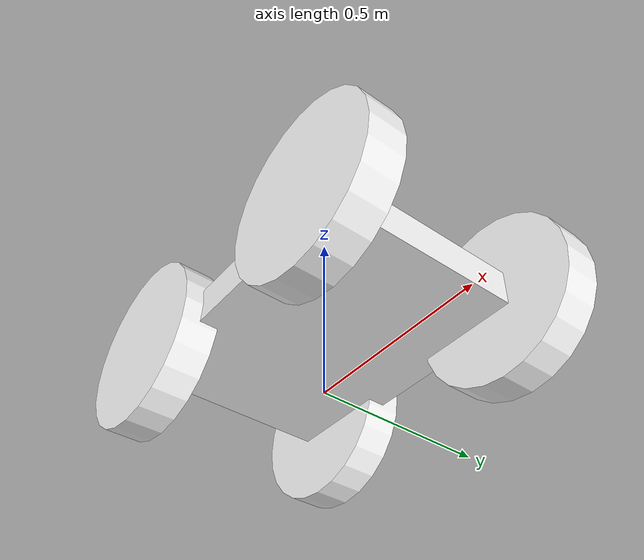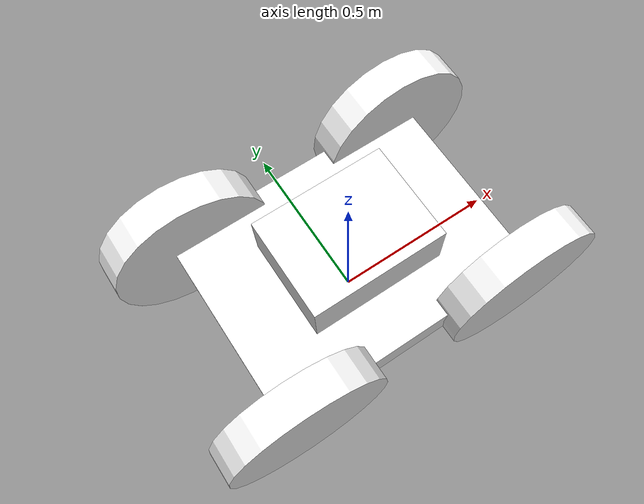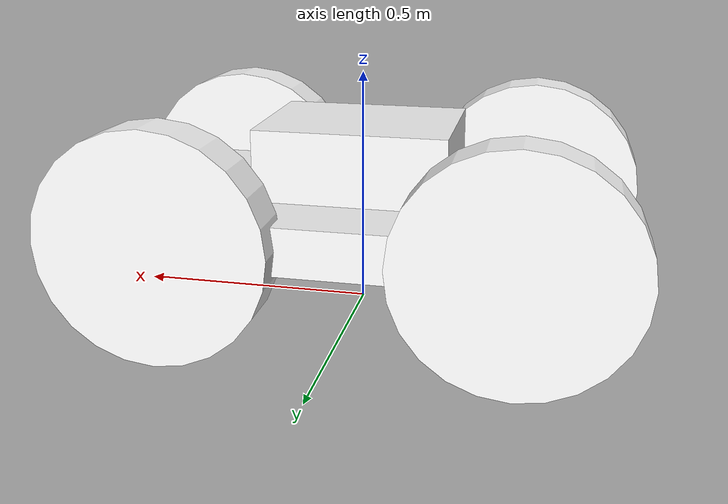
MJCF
<mujoco model="four_wheel_robot">
  <compiler angle="degree" autolimits="true"/>
  <!-- Physics settings removed - now controlled by environment -->
  <size njmax="1000" nconmax="500"/>

  <default>
    <geom rgba="1 1 1 1" friction="1.2 0.01 0.002" condim="4"/>
  </default>

  <asset>
    <material name="mat_chassis" rgba="0.39 0.13 0.63 1"/>
    <material name="mat_wheel"   rgba="0.1 0.1 0.1 1"/>
    <material name="mat_floor"   rgba="0.85 0.85 0.85 1"/>
  </asset>

  <worldbody>
    <!-- Robot base (free joint), with 4 wheels -->
    <body name="robot" pos="0 0 0.2">
      <!-- Free joint so the robot can move anywhere, with damping for stability -->
      <joint name="root" type="free" damping="0.5"/>

      <!-- Chassis -->
      <!-- box size = half-dimensions: x=0.40, y=0.30, z=0.10  (full size: 0.8 x 0.6 x 0.2 m) -->
      <geom name="chassis" type="box" size="0.40 0.30 0.05" material="mat_chassis" mass="51"/>
      <body name="chassis-up" pos="0 0 0.1">
        <geom name="chassis-upp" type="box" size="0.20 0.15 0.1" material="mat_chassis" mass="51"/>
      </body>

      <!-- Wheel parameters -->
      <!-- wheel radius r, half-length (width/2) w/2. Cylinder’s axis is local Z; we rotate with euler="90 0 0" so the cylinder’s axis aligns with world Y (the hinge axis below). -->
      <!-- Positions: +-x_off, +-y_off from chassis center -->
      <!-- Extended wheels outside chassis for better visibility: 0.25 + 0.05 = 0.30 -->
      <body name="wheel_fl" pos=" 0.35  0.30 0">  <!-- front-left -->
        <joint name="hinge_fl" type="hinge" axis="0 1 0" damping="0.1" limited="false"/>
        <geom  name="geom_fl"  type="cylinder" size="0.24 0.05" euler="90 0 0" material="mat_wheel" mass="1.0"/>
      </body>

      <body name="wheel_fr" pos=" 0.35 -0.30 0">  <!-- front-right -->
        <joint name="hinge_fr" type="hinge" axis="0 1 0" damping="0.1" limited="false"/>
        <geom  name="geom_fr"  type="cylinder" size="0.24 0.05" euler="90 0 0" material="mat_wheel" mass="1.0"/>
      </body>

      <body name="wheel_rl" pos="-0.35  0.30 0">  <!-- rear-left -->
        <joint name="hinge_rl" type="hinge" axis="0 1 0" damping="0.1" limited="false"/>
        <geom  name="geom_rl"  type="cylinder" size="0.24 0.05" euler="90 0 0" material="mat_wheel" mass="1.0"/>
      </body>

      <body name="wheel_rr" pos="-0.35 -0.30 0">  <!-- rear-right -->
        <joint name="hinge_rr" type="hinge" axis="0 1 0" damping="0.1" limited="false"/>
        <geom  name="geom_rr"  type="cylinder" size="0.24 0.05" euler="90 0 0" material="mat_wheel" mass="1.0"/>
      </body>
    </body>
  </worldbody>

  <!-- Drive each wheel with a velocity motor (rad/s). Use left/right differentials to steer. -->
  <actuator>
    <!-- Reduced kv gain for realistic speed control -->
    <velocity name="motor_fl" joint="hinge_fl" kv="2" ctrllimited="true" ctrlrange="-10 10"/>
    <velocity name="motor_fr" joint="hinge_fr" kv="2" ctrllimited="true" ctrlrange="-10 10"/>
    <velocity name="motor_rl" joint="hinge_rl" kv="2" ctrllimited="true" ctrlrange="-10 10"/>
    <velocity name="motor_rr" joint="hinge_rr" kv="2" ctrllimited="true" ctrlrange="-10 10"/>
  </actuator>
</mujoco>
